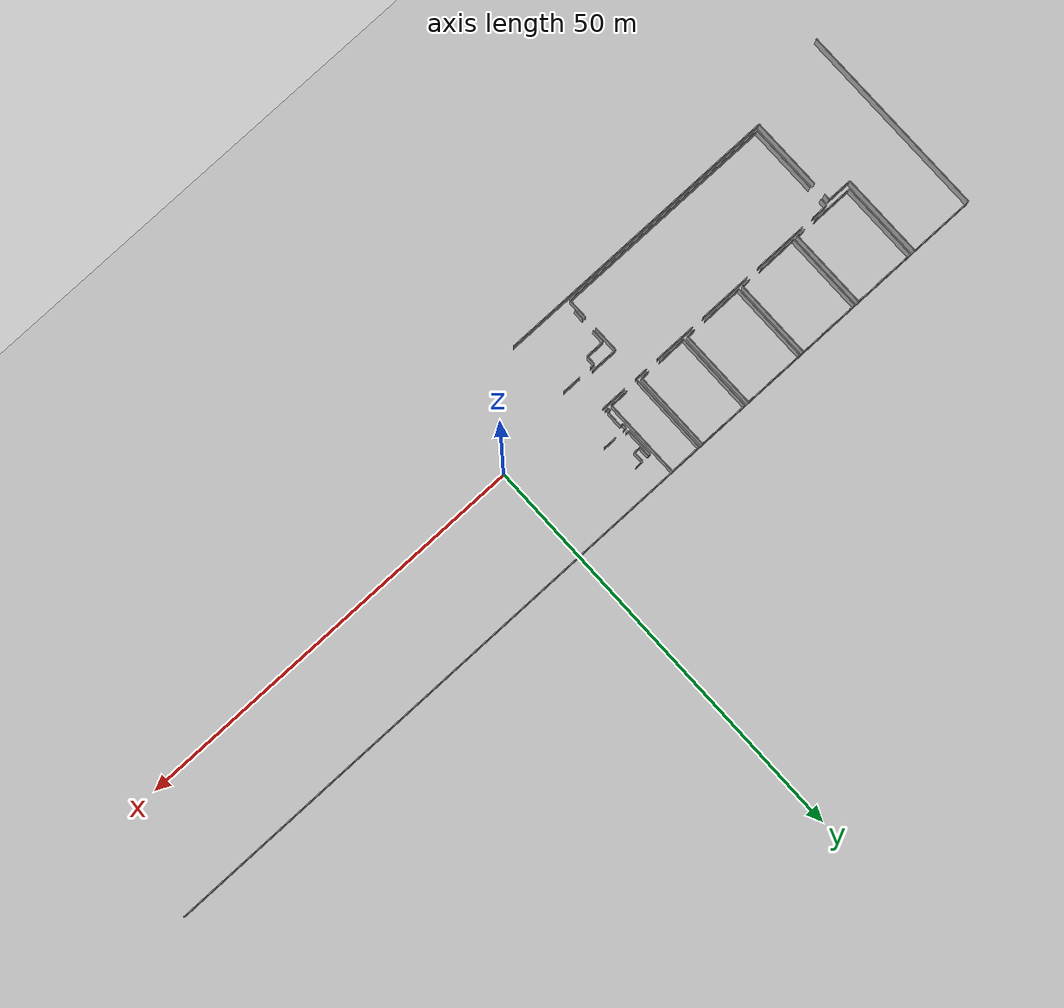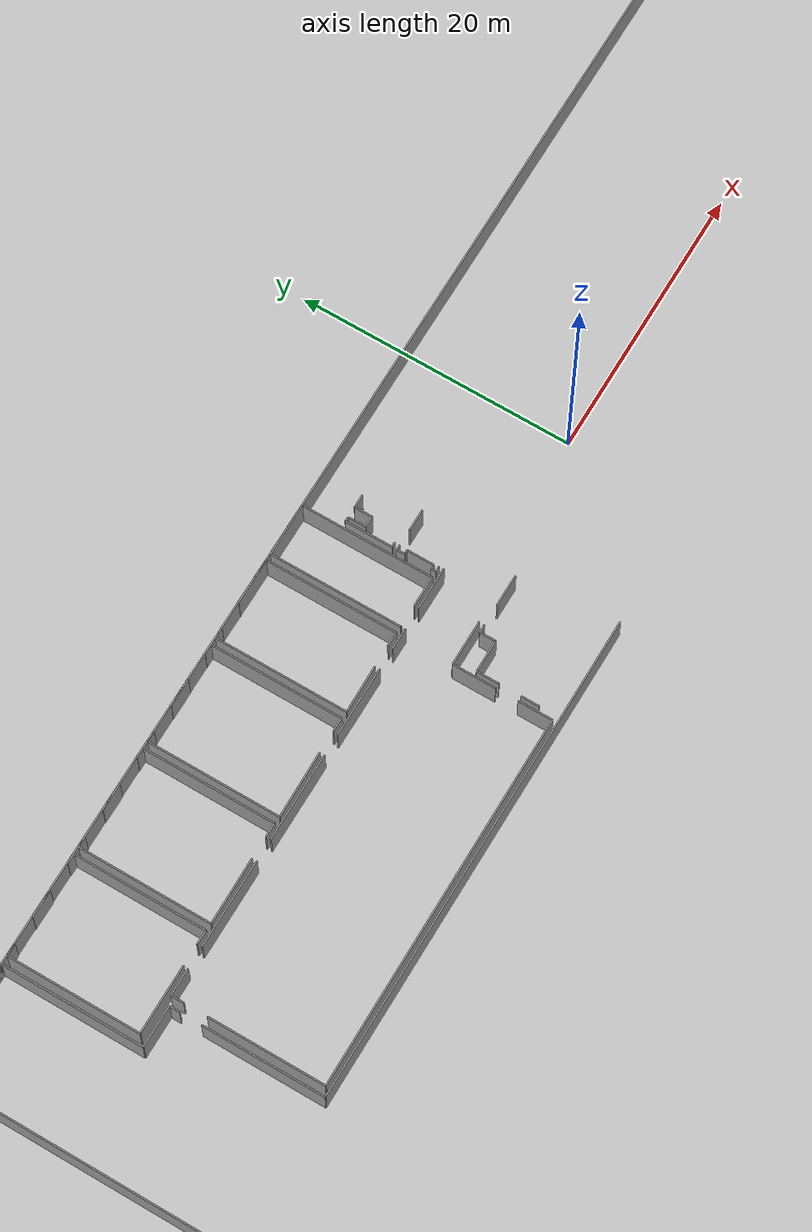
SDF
<sdf version="1.6">
 <world name="default">
  <model name="ground_plane">
   <static>1</static>
   <link name="link">
    <collision name="collision">
     <geometry><plane><normal>0 0 1</normal><size>100 100</size></plane></geometry>
     <surface><friction><ode><mu>100</mu><mu2>50</mu2></ode></friction></surface>
    </collision>
    <visual name="visual">
     <cast_shadows>0</cast_shadows>
     <geometry><plane><normal>0 0 1</normal><size>100 100</size></plane></geometry>
     <material>
      <script><uri>file://media/materials/scripts/gazebo.material</uri><name>Gazebo/Grey</name></script>
     </material>
    </visual>
   </link>
  </model>
  <model name="0510034693_Layout1">
   <static>1</static>
   <link name="Wall_0">
    <collision name="Wall_0_Collision">
     <geometry><box><size>23.9682171457 0.1 2.5</size></box></geometry>
     <pose>11.9841085728 0 1.25 0 0 0</pose>
    </collision>
    <visual name="Wall_0_Visual">
     <pose>11.9841085728 0 1.25 0 0 0</pose>
     <geometry><box><size>23.9682171457 0.1 2.5</size></box></geometry>
     <material>
      <script><uri>file://media/materials/scripts/gazebo.material</uri><name>Gazebo/Grey</name></script>
      <ambient>1 1 1 1</ambient>
     </material>
    </visual>
    <pose>0.0 -23.9682171457 0 0 0 1.57079632679</pose>
   </link>
   <link name="Wall_1">
    <collision name="Wall_1_Collision">
     <geometry><box><size>7.87282294673 0.1 2.5</size></box></geometry>
     <pose>3.93641147337 0 1.25 0 0 0</pose>
    </collision>
    <visual name="Wall_1_Visual">
     <pose>3.93641147337 0 1.25 0 0 0</pose>
     <geometry><box><size>7.87282294673 0.1 2.5</size></box></geometry>
     <material>
      <script><uri>file://media/materials/scripts/gazebo.material</uri><name>Gazebo/Grey</name></script>
      <ambient>1 1 1 1</ambient>
     </material>
    </visual>
   </link>
   <link name="Wall_2">
    <collision name="Wall_2_Collision">
     <geometry><box><size>10.2181268246 0.1 2.5</size></box></geometry>
     <pose>5.10906341232 0 1.25 0 0 0</pose>
    </collision>
    <visual name="Wall_2_Visual">
     <pose>5.10906341232 0 1.25 0 0 0</pose>
     <geometry><box><size>10.2181268246 0.1 2.5</size></box></geometry>
     <material>
      <script><uri>file://media/materials/scripts/gazebo.material</uri><name>Gazebo/Grey</name></script>
      <ambient>1 1 1 1</ambient>
     </material>
    </visual>
    <pose>7.87282294673 -0.0 0 0 0 -1.57079632679</pose>
   </link>
   <link name="Wall_3">
    <collision name="Wall_3_Collision">
     <geometry><box><size>2.9954883863 0.1 2.5</size></box></geometry>
     <pose>1.49774419315 0 1.25 0 0 0</pose>
    </collision>
    <visual name="Wall_3_Visual">
     <pose>1.49774419315 0 1.25 0 0 0</pose>
     <geometry><box><size>2.9954883863 0.1 2.5</size></box></geometry>
     <material>
      <script><uri>file://media/materials/scripts/gazebo.material</uri><name>Gazebo/Grey</name></script>
      <ambient>1 1 1 1</ambient>
     </material>
    </visual>
    <pose>7.87282294673 -10.2181268246 0 0 0 0.0</pose>
   </link>
   <link name="Wall_4">
    <collision name="Wall_4_Collision">
     <geometry><box><size>0.747921349098 0.1 2.5</size></box></geometry>
     <pose>0.373960674549 0 1.25 0 0 0</pose>
    </collision>
    <visual name="Wall_4_Visual">
     <pose>0.373960674549 0 1.25 0 0 0</pose>
     <geometry><box><size>0.747921349098 0.1 2.5</size></box></geometry>
     <material>
      <script><uri>file://media/materials/scripts/gazebo.material</uri><name>Gazebo/Grey</name></script>
      <ambient>1 1 1 1</ambient>
     </material>
    </visual>
    <pose>10.868311333 -10.2181268246 0 0 0 -1.57079632679</pose>
   </link>
   <link name="Wall_5">
    <collision name="Wall_5_Collision">
     <geometry><box><size>8.76069432454 0.1 2.5</size></box></geometry>
     <pose>4.38034716227 0 1.25 0 0 0</pose>
    </collision>
    <visual name="Wall_5_Visual">
     <pose>4.38034716227 0 1.25 0 0 0</pose>
     <geometry><box><size>8.76069432454 0.1 2.5</size></box></geometry>
     <material>
      <script><uri>file://media/materials/scripts/gazebo.material</uri><name>Gazebo/Grey</name></script>
      <ambient>1 1 1 1</ambient>
     </material>
    </visual>
    <pose>10.868311333 -12.5241331401 0 0 0 -1.57079632679</pose>
   </link>
   <link name="Wall_6">
    <collision name="Wall_6_Collision">
     <geometry><box><size>35.6847219951 0.1 2.5</size></box></geometry>
     <pose>17.8423609975 0 1.25 0 0 0</pose>
    </collision>
    <visual name="Wall_6_Visual">
     <pose>17.8423609975 0 1.25 0 0 0</pose>
     <geometry><box><size>35.6847219951 0.1 2.5</size></box></geometry>
     <material>
      <script><uri>file://media/materials/scripts/gazebo.material</uri><name>Gazebo/Grey</name></script>
      <ambient>1 1 1 1</ambient>
     </material>
    </visual>
    <pose>10.868311333 -21.2848274647 0 0 0 0.0</pose>
   </link>
   <link name="Wall_13">
    <collision name="Wall_13_Collision">
     <geometry><box><size>8.40017088101 0.1 2.5</size></box></geometry>
     <pose>4.20008544051 0 1.25 0 0 0</pose>
    </collision>
    <visual name="Wall_13_Visual">
     <pose>4.20008544051 0 1.25 0 0 0</pose>
     <geometry><box><size>8.40017088101 0.1 2.5</size></box></geometry>
     <material>
      <script><uri>file://media/materials/scripts/gazebo.material</uri><name>Gazebo/Grey</name></script>
      <ambient>1 1 1 1</ambient>
     </material>
    </visual>
    <pose>11.4894663518 -20.9425583727 0 0 0 1.57079632679</pose>
   </link>
   <link name="Wall_14">
    <collision name="Wall_14_Collision">
     <geometry><box><size>0.926535108569 0.1 2.5</size></box></geometry>
     <pose>0.463267554285 0 1.25 0 0 0</pose>
    </collision>
    <visual name="Wall_14_Visual">
     <pose>0.463267554285 0 1.25 0 0 0</pose>
     <geometry><box><size>0.926535108569 0.1 2.5</size></box></geometry>
     <material>
      <script><uri>file://media/materials/scripts/gazebo.material</uri><name>Gazebo/Grey</name></script>
      <ambient>1 1 1 1</ambient>
     </material>
    </visual>
    <pose>11.4894663518 -10.8651421748 0 0 0 1.57079632679</pose>
   </link>
   <link name="Wall_15">
    <collision name="Wall_15_Collision">
     <geometry><box><size>1.95752567335 0.1 2.5</size></box></geometry>
     <pose>0.978762836676 0 1.25 0 0 0</pose>
    </collision>
    <visual name="Wall_15_Visual">
     <pose>0.978762836676 0 1.25 0 0 0</pose>
     <geometry><box><size>1.95752567335 0.1 2.5</size></box></geometry>
     <material>
      <script><uri>file://media/materials/scripts/gazebo.material</uri><name>Gazebo/Grey</name></script>
      <ambient>1 1 1 1</ambient>
     </material>
    </visual>
    <pose>11.4894663518 -9.93860706621 0 0 0 0.0</pose>
   </link>
   <link name="Wall_16">
    <collision name="Wall_16_Collision">
     <geometry><box><size>6.38534682634 0.1 2.5</size></box></geometry>
     <pose>3.19267341317 0 1.25 0 0 0</pose>
    </collision>
    <visual name="Wall_16_Visual">
     <pose>3.19267341317 0 1.25 0 0 0</pose>
     <geometry><box><size>6.38534682634 0.1 2.5</size></box></geometry>
     <material>
      <script><uri>file://media/materials/scripts/gazebo.material</uri><name>Gazebo/Grey</name></script>
      <ambient>1 1 1 1</ambient>
     </material>
    </visual>
    <pose>15.054389094 -9.93860706621 0 0 0 0.0</pose>
   </link>
   <link name="Wall_17">
    <collision name="Wall_17_Collision">
     <geometry><box><size>6.40753093415 0.1 2.5</size></box></geometry>
     <pose>3.20376546708 0 1.25 0 0 0</pose>
    </collision>
    <visual name="Wall_17_Visual">
     <pose>3.20376546708 0 1.25 0 0 0</pose>
     <geometry><box><size>6.40753093415 0.1 2.5</size></box></geometry>
     <material>
      <script><uri>file://media/materials/scripts/gazebo.material</uri><name>Gazebo/Grey</name></script>
      <ambient>1 1 1 1</ambient>
     </material>
    </visual>
    <pose>23.0582884264 -9.93860706621 0 0 0 0.0</pose>
   </link>
   <link name="Wall_18">
    <collision name="Wall_18_Collision">
     <geometry><box><size>5.09955593754 0.1 2.5</size></box></geometry>
     <pose>2.54977796877 0 1.25 0 0 0</pose>
    </collision>
    <visual name="Wall_18_Visual">
     <pose>2.54977796877 0 1.25 0 0 0</pose>
     <geometry><box><size>5.09955593754 0.1 2.5</size></box></geometry>
     <material>
      <script><uri>file://media/materials/scripts/gazebo.material</uri><name>Gazebo/Grey</name></script>
      <ambient>1 1 1 1</ambient>
     </material>
    </visual>
    <pose>30.9956354352 -9.93860706621 0 0 0 0.0</pose>
   </link>
   <link name="Wall_19">
    <collision name="Wall_19_Collision">
     <geometry><box><size>1.56036676035 0.1 2.5</size></box></geometry>
     <pose>0.780183380173 0 1.25 0 0 0</pose>
    </collision>
    <visual name="Wall_19_Visual">
     <pose>0.780183380173 0 1.25 0 0 0</pose>
     <geometry><box><size>1.56036676035 0.1 2.5</size></box></geometry>
     <material>
      <script><uri>file://media/materials/scripts/gazebo.material</uri><name>Gazebo/Grey</name></script>
      <ambient>1 1 1 1</ambient>
     </material>
    </visual>
    <pose>37.6693756631 -9.93860706621 0 0 0 0.0</pose>
   </link>
   <link name="Wall_20">
    <collision name="Wall_20_Collision">
     <geometry><box><size>3.10514126206 0.1 2.5</size></box></geometry>
     <pose>1.55257063103 0 1.25 0 0 0</pose>
    </collision>
    <visual name="Wall_20_Visual">
     <pose>1.55257063103 0 1.25 0 0 0</pose>
     <geometry><box><size>3.10514126206 0.1 2.5</size></box></geometry>
     <material>
      <script><uri>file://media/materials/scripts/gazebo.material</uri><name>Gazebo/Grey</name></script>
      <ambient>1 1 1 1</ambient>
     </material>
    </visual>
    <pose>40.8333365025 -9.93860706621 0 0 0 0.0</pose>
   </link>
   <link name="Wall_23">
    <collision name="Wall_23_Collision">
     <geometry><box><size>3.30061494347 0.1 2.5</size></box></geometry>
     <pose>1.65030747173 0 1.25 0 0 0</pose>
    </collision>
    <visual name="Wall_23_Visual">
     <pose>1.65030747173 0 1.25 0 0 0</pose>
     <geometry><box><size>3.30061494347 0.1 2.5</size></box></geometry>
     <material>
      <script><uri>file://media/materials/scripts/gazebo.material</uri><name>Gazebo/Grey</name></script>
      <ambient>1 1 1 1</ambient>
     </material>
    </visual>
    <pose>42.0175875607 -13.6842985956 0 0 0 3.14159265359</pose>
   </link>
   <link name="Wall_24">
    <collision name="Wall_24_Collision">
     <geometry><box><size>3.14215703052 0.1 2.5</size></box></geometry>
     <pose>1.57107851526 0 1.25 0 0 0</pose>
    </collision>
    <visual name="Wall_24_Visual">
     <pose>1.57107851526 0 1.25 0 0 0</pose>
     <geometry><box><size>3.14215703052 0.1 2.5</size></box></geometry>
     <material>
      <script><uri>file://media/materials/scripts/gazebo.material</uri><name>Gazebo/Grey</name></script>
      <ambient>1 1 1 1</ambient>
     </material>
    </visual>
    <pose>38.7169726172 -13.6842985956 0 0 0 -1.57079632679</pose>
   </link>
   <link name="Wall_25">
    <collision name="Wall_25_Collision">
     <geometry><box><size>2.47916912276 0.1 2.5</size></box></geometry>
     <pose>1.23958456138 0 1.25 0 0 0</pose>
    </collision>
    <visual name="Wall_25_Visual">
     <pose>1.23958456138 0 1.25 0 0 0</pose>
     <geometry><box><size>2.47916912276 0.1 2.5</size></box></geometry>
     <material>
      <script><uri>file://media/materials/scripts/gazebo.material</uri><name>Gazebo/Grey</name></script>
      <ambient>1 1 1 1</ambient>
     </material>
    </visual>
    <pose>38.7169726172 -18.4408248432 0 0 0 -1.57079632679</pose>
   </link>
   <link name="Wall_26">
    <collision name="Wall_26_Collision">
     <geometry><box><size>27.2275156154 0.1 2.5</size></box></geometry>
     <pose>13.6137578077 0 1.25 0 0 0</pose>
    </collision>
    <visual name="Wall_26_Visual">
     <pose>13.6137578077 0 1.25 0 0 0</pose>
     <geometry><box><size>27.2275156154 0.1 2.5</size></box></geometry>
     <material>
      <script><uri>file://media/materials/scripts/gazebo.material</uri><name>Gazebo/Grey</name></script>
      <ambient>1 1 1 1</ambient>
     </material>
    </visual>
    <pose>38.7169726172 -20.9199939659 0 0 0 -3.14076391807</pose>
   </link>
   <link name="Wall_27">
    <collision name="Wall_27_Collision">
     <geometry><box><size>9.55919543945 0.1 2.5</size></box></geometry>
     <pose>4.77959771973 0 1.25 0 0 0</pose>
    </collision>
    <visual name="Wall_27_Visual">
     <pose>4.77959771973 0 1.25 0 0 0</pose>
     <geometry><box><size>9.55919543945 0.1 2.5</size></box></geometry>
     <material>
      <script><uri>file://media/materials/scripts/gazebo.material</uri><name>Gazebo/Grey</name></script>
      <ambient>1 1 1 1</ambient>
     </material>
    </visual>
    <pose>8.49385119915 -9.60014096416 0 0 0 1.57079632679</pose>
   </link>
   <link name="Wall_28">
    <collision name="Wall_28_Collision">
     <geometry><box><size>0.832347725115 0.1 2.5</size></box></geometry>
     <pose>0.416173862557 0 1.25 0 0 0</pose>
    </collision>
    <visual name="Wall_28_Visual">
     <pose>0.416173862557 0 1.25 0 0 0</pose>
     <geometry><box><size>0.832347725115 0.1 2.5</size></box></geometry>
     <material>
      <script><uri>file://media/materials/scripts/gazebo.material</uri><name>Gazebo/Grey</name></script>
      <ambient>1 1 1 1</ambient>
     </material>
    </visual>
    <pose>8.49385119915 -0.0409455247049 0 0 0 0.0</pose>
   </link>
   <link name="Wall_29">
    <collision name="Wall_29_Collision">
     <geometry><box><size>1.98389307007 0.1 2.5</size></box></geometry>
     <pose>0.991946535033 0 1.25 0 0 0</pose>
    </collision>
    <visual name="Wall_29_Visual">
     <pose>0.991946535033 0 1.25 0 0 0</pose>
     <geometry><box><size>1.98389307007 0.1 2.5</size></box></geometry>
     <material>
      <script><uri>file://media/materials/scripts/gazebo.material</uri><name>Gazebo/Grey</name></script>
      <ambient>1 1 1 1</ambient>
     </material>
    </visual>
    <pose>11.3320225695 -0.0409455247049 0 0 0 0.0</pose>
   </link>
   <link name="Wall_30">
    <collision name="Wall_30_Collision">
     <geometry><box><size>0.745386022491 0.1 2.5</size></box></geometry>
     <pose>0.372693011245 0 1.25 0 0 0</pose>
    </collision>
    <visual name="Wall_30_Visual">
     <pose>0.372693011245 0 1.25 0 0 0</pose>
     <geometry><box><size>0.745386022491 0.1 2.5</size></box></geometry>
     <material>
      <script><uri>file://media/materials/scripts/gazebo.material</uri><name>Gazebo/Grey</name></script>
      <ambient>1 1 1 1</ambient>
     </material>
    </visual>
    <pose>15.3162883326 -0.0409455247049 0 0 0 0.0</pose>
   </link>
   <link name="Wall_31">
    <collision name="Wall_31_Collision">
     <geometry><box><size>9.55767424349 0.1 2.5</size></box></geometry>
     <pose>4.77883712175 0 1.25 0 0 0</pose>
    </collision>
    <visual name="Wall_31_Visual">
     <pose>4.77883712175 0 1.25 0 0 0</pose>
     <geometry><box><size>9.55767424349 0.1 2.5</size></box></geometry>
     <material>
      <script><uri>file://media/materials/scripts/gazebo.material</uri><name>Gazebo/Grey</name></script>
      <ambient>1 1 1 1</ambient>
     </material>
    </visual>
    <pose>16.061674355 -0.0409455247049 0 0 0 -1.57079632679</pose>
   </link>
   <link name="Wall_32">
    <collision name="Wall_32_Collision">
     <geometry><box><size>1.02870877084 0.1 2.5</size></box></geometry>
     <pose>0.514354385418 0 1.25 0 0 0</pose>
    </collision>
    <visual name="Wall_32_Visual">
     <pose>0.514354385418 0 1.25 0 0 0</pose>
     <geometry><box><size>1.02870877084 0.1 2.5</size></box></geometry>
     <material>
      <script><uri>file://media/materials/scripts/gazebo.material</uri><name>Gazebo/Grey</name></script>
      <ambient>1 1 1 1</ambient>
     </material>
    </visual>
    <pose>16.061674355 -9.5986197682 0 0 0 3.14159265359</pose>
   </link>
   <link name="Wall_33">
    <collision name="Wall_33_Collision">
     <geometry><box><size>4.97481810105 0.1 2.5</size></box></geometry>
     <pose>2.48740905052 0 1.25 0 0 0</pose>
    </collision>
    <visual name="Wall_33_Visual">
     <pose>2.48740905052 0 1.25 0 0 0</pose>
     <geometry><box><size>4.97481810105 0.1 2.5</size></box></geometry>
     <material>
      <script><uri>file://media/materials/scripts/gazebo.material</uri><name>Gazebo/Grey</name></script>
      <ambient>1 1 1 1</ambient>
     </material>
    </visual>
    <pose>13.4686690676 -9.5986197682 0 0 0 -3.14128687437</pose>
   </link>
   <link name="Wall_34">
    <collision name="Wall_34_Collision">
     <geometry><box><size>9.60863430829 0.1 2.5</size></box></geometry>
     <pose>4.80431715415 0 1.25 0 0 0</pose>
    </collision>
    <visual name="Wall_34_Visual">
     <pose>4.80431715415 0 1.25 0 0 0</pose>
     <geometry><box><size>9.60863430829 0.1 2.5</size></box></geometry>
     <material>
      <script><uri>file://media/materials/scripts/gazebo.material</uri><name>Gazebo/Grey</name></script>
      <ambient>1 1 1 1</ambient>
     </material>
    </visual>
    <pose>16.5913040833 -9.64210061951 0 0 0 1.57079632679</pose>
   </link>
   <link name="Wall_35">
    <collision name="Wall_35_Collision">
     <geometry><box><size>0.721173653393 0.1 2.5</size></box></geometry>
     <pose>0.360586826696 0 1.25 0 0 0</pose>
    </collision>
    <visual name="Wall_35_Visual">
     <pose>0.360586826696 0 1.25 0 0 0</pose>
     <geometry><box><size>0.721173653393 0.1 2.5</size></box></geometry>
     <material>
      <script><uri>file://media/materials/scripts/gazebo.material</uri><name>Gazebo/Grey</name></script>
      <ambient>1 1 1 1</ambient>
     </material>
    </visual>
    <pose>16.5913040833 -0.0334663112139 0 0 0 0.0</pose>
   </link>
   <link name="Wall_36">
    <collision name="Wall_36_Collision">
     <geometry><box><size>1.97451236162 0.1 2.5</size></box></geometry>
     <pose>0.987256180809 0 1.25 0 0 0</pose>
    </collision>
    <visual name="Wall_36_Visual">
     <pose>0.987256180809 0 1.25 0 0 0</pose>
     <geometry><box><size>1.97451236162 0.1 2.5</size></box></geometry>
     <material>
      <script><uri>file://media/materials/scripts/gazebo.material</uri><name>Gazebo/Grey</name></script>
      <ambient>1 1 1 1</ambient>
     </material>
    </visual>
    <pose>19.3445420123 -0.0334663112139 0 0 0 0.0</pose>
   </link>
   <link name="Wall_37">
    <collision name="Wall_37_Collision">
     <geometry><box><size>0.747667816437 0.1 2.5</size></box></geometry>
     <pose>0.373833908219 0 1.25 0 0 0</pose>
    </collision>
    <visual name="Wall_37_Visual">
     <pose>0.373833908219 0 1.25 0 0 0</pose>
     <geometry><box><size>0.747667816437 0.1 2.5</size></box></geometry>
     <material>
      <script><uri>file://media/materials/scripts/gazebo.material</uri><name>Gazebo/Grey</name></script>
      <ambient>1 1 1 1</ambient>
     </material>
    </visual>
    <pose>23.3319769336 -0.0334663112139 0 0 0 0.0</pose>
   </link>
   <link name="Wall_38">
    <collision name="Wall_38_Collision">
     <geometry><box><size>9.56616758762 0.1 2.5</size></box></geometry>
     <pose>4.78308379381 0 1.25 0 0 0</pose>
    </collision>
    <visual name="Wall_38_Visual">
     <pose>4.78308379381 0 1.25 0 0 0</pose>
     <geometry><box><size>9.56616758762 0.1 2.5</size></box></geometry>
     <material>
      <script><uri>file://media/materials/scripts/gazebo.material</uri><name>Gazebo/Grey</name></script>
      <ambient>1 1 1 1</ambient>
     </material>
    </visual>
    <pose>24.07964475 -0.0334663112139 0 0 0 -1.57079632679</pose>
   </link>
   <link name="Wall_39">
    <collision name="Wall_39_Collision">
     <geometry><box><size>1.04480809479 0.1 2.5</size></box></geometry>
     <pose>0.522404047395 0 1.25 0 0 0</pose>
    </collision>
    <visual name="Wall_39_Visual">
     <pose>0.522404047395 0 1.25 0 0 0</pose>
     <geometry><box><size>1.04480809479 0.1 2.5</size></box></geometry>
     <material>
      <script><uri>file://media/materials/scripts/gazebo.material</uri><name>Gazebo/Grey</name></script>
      <ambient>1 1 1 1</ambient>
     </material>
    </visual>
    <pose>24.07964475 -9.59963389884 0 0 0 3.14159265359</pose>
   </link>
   <link name="Wall_40">
    <collision name="Wall_40_Collision">
     <geometry><box><size>4.84722343738 0.1 2.5</size></box></geometry>
     <pose>2.42361171869 0 1.25 0 0 0</pose>
    </collision>
    <visual name="Wall_40_Visual">
     <pose>2.42361171869 0 1.25 0 0 0</pose>
     <geometry><box><size>4.84722343738 0.1 2.5</size></box></geometry>
     <material>
      <script><uri>file://media/materials/scripts/gazebo.material</uri><name>Gazebo/Grey</name></script>
      <ambient>1 1 1 1</ambient>
     </material>
    </visual>
    <pose>21.4383414907 -9.59963389884 0 0 0 -3.13283150105</pose>
   </link>
   <link name="Wall_41">
    <collision name="Wall_41_Collision">
     <geometry><box><size>9.6240998006 0.1 2.5</size></box></geometry>
     <pose>4.8120499003 0 1.25 0 0 0</pose>
    </collision>
    <visual name="Wall_41_Visual">
     <pose>4.8120499003 0 1.25 0 0 0</pose>
     <geometry><box><size>9.6240998006 0.1 2.5</size></box></geometry>
     <material>
      <script><uri>file://media/materials/scripts/gazebo.material</uri><name>Gazebo/Grey</name></script>
      <ambient>1 1 1 1</ambient>
     </material>
    </visual>
    <pose>24.5949498829 -9.64717127272 0 0 0 1.57079632679</pose>
   </link>
   <link name="Wall_42">
    <collision name="Wall_42_Collision">
     <geometry><box><size>0.735878547714 0.1 2.5</size></box></geometry>
     <pose>0.367939273857 0 1.25 0 0 0</pose>
    </collision>
    <visual name="Wall_42_Visual">
     <pose>0.367939273857 0 1.25 0 0 0</pose>
     <geometry><box><size>0.735878547714 0.1 2.5</size></box></geometry>
     <material>
      <script><uri>file://media/materials/scripts/gazebo.material</uri><name>Gazebo/Grey</name></script>
      <ambient>1 1 1 1</ambient>
     </material>
    </visual>
    <pose>24.5949498829 -0.0230714721247 0 0 0 0.0</pose>
   </link>
   <link name="Wall_43">
    <collision name="Wall_43_Collision">
     <geometry><box><size>2.02547242642 0.1 2.5</size></box></geometry>
     <pose>1.01273621321 0 1.25 0 0 0</pose>
    </collision>
    <visual name="Wall_43_Visual">
     <pose>1.01273621321 0 1.25 0 0 0</pose>
     <geometry><box><size>2.02547242642 0.1 2.5</size></box></geometry>
     <material>
      <script><uri>file://media/materials/scripts/gazebo.material</uri><name>Gazebo/Grey</name></script>
      <ambient>1 1 1 1</ambient>
     </material>
    </visual>
    <pose>27.3228345459 -0.0230714721247 0 0 0 0.0</pose>
   </link>
   <link name="Wall_44">
    <collision name="Wall_44_Collision">
     <geometry><box><size>0.758442954518 0.1 2.5</size></box></geometry>
     <pose>0.379221477259 0 1.25 0 0 0</pose>
    </collision>
    <visual name="Wall_44_Visual">
     <pose>0.379221477259 0 1.25 0 0 0</pose>
     <geometry><box><size>0.758442954518 0.1 2.5</size></box></geometry>
     <material>
      <script><uri>file://media/materials/scripts/gazebo.material</uri><name>Gazebo/Grey</name></script>
      <ambient>1 1 1 1</ambient>
     </material>
    </visual>
    <pose>31.3237066982 -0.0230714721247 0 0 0 0.0</pose>
   </link>
   <link name="Wall_45">
    <collision name="Wall_45_Collision">
     <geometry><box><size>9.5685761479 0.1 2.5</size></box></geometry>
     <pose>4.78428807395 0 1.25 0 0 0</pose>
    </collision>
    <visual name="Wall_45_Visual">
     <pose>4.78428807395 0 1.25 0 0 0</pose>
     <geometry><box><size>9.5685761479 0.1 2.5</size></box></geometry>
     <material>
      <script><uri>file://media/materials/scripts/gazebo.material</uri><name>Gazebo/Grey</name></script>
      <ambient>1 1 1 1</ambient>
     </material>
    </visual>
    <pose>32.0821496527 -0.0230714721247 0 0 0 -1.57079632679</pose>
   </link>
   <link name="Wall_46">
    <collision name="Wall_46_Collision">
     <geometry><box><size>1.01679273578 0.1 2.5</size></box></geometry>
     <pose>0.508396367891 0 1.25 0 0 0</pose>
    </collision>
    <visual name="Wall_46_Visual">
     <pose>0.508396367891 0 1.25 0 0 0</pose>
     <geometry><box><size>1.01679273578 0.1 2.5</size></box></geometry>
     <material>
      <script><uri>file://media/materials/scripts/gazebo.material</uri><name>Gazebo/Grey</name></script>
      <ambient>1 1 1 1</ambient>
     </material>
    </visual>
    <pose>32.0821496527 -9.59164762003 0 0 0 3.14159265359</pose>
   </link>
   <link name="Wall_47">
    <collision name="Wall_47_Collision">
     <geometry><box><size>4.87765059126 0.1 2.5</size></box></geometry>
     <pose>2.43882529563 0 1.25 0 0 0</pose>
    </collision>
    <visual name="Wall_47_Visual">
     <pose>2.43882529563 0 1.25 0 0 0</pose>
     <geometry><box><size>4.87765059126 0.1 2.5</size></box></geometry>
     <material>
      <script><uri>file://media/materials/scripts/gazebo.material</uri><name>Gazebo/Grey</name></script>
      <ambient>1 1 1 1</ambient>
     </material>
    </visual>
    <pose>29.4722844434 -9.59164762003 0 0 0 -3.13020912973</pose>
   </link>
   <link name="Wall_48">
    <collision name="Wall_48_Collision">
     <geometry><box><size>9.62524069757 0.1 2.5</size></box></geometry>
     <pose>4.81262034878 0 1.25 0 0 0</pose>
    </collision>
    <visual name="Wall_48_Visual">
     <pose>4.81262034878 0 1.25 0 0 0</pose>
     <geometry><box><size>9.62524069757 0.1 2.5</size></box></geometry>
     <material>
      <script><uri>file://media/materials/scripts/gazebo.material</uri><name>Gazebo/Grey</name></script>
      <ambient>1 1 1 1</ambient>
     </material>
    </visual>
    <pose>32.6018916072 -9.64210061951 0 0 0 1.57079632679</pose>
   </link>
   <link name="Wall_49">
    <collision name="Wall_49_Collision">
     <geometry><box><size>0.732075557804 0.1 2.5</size></box></geometry>
     <pose>0.366037778902 0 1.25 0 0 0</pose>
    </collision>
    <visual name="Wall_49_Visual">
     <pose>0.366037778902 0 1.25 0 0 0</pose>
     <geometry><box><size>0.732075557804 0.1 2.5</size></box></geometry>
     <material>
      <script><uri>file://media/materials/scripts/gazebo.material</uri><name>Gazebo/Grey</name></script>
      <ambient>1 1 1 1</ambient>
     </material>
    </visual>
    <pose>32.6018916072 -0.0168599219373 0 0 0 0.0</pose>
   </link>
   <link name="Wall_50">
    <collision name="Wall_50_Collision">
     <geometry><box><size>3.37033642516 0.1 2.5</size></box></geometry>
     <pose>1.68516821258 0 1.25 0 0 0</pose>
    </collision>
    <visual name="Wall_50_Visual">
     <pose>1.68516821258 0 1.25 0 0 0</pose>
     <geometry><box><size>3.37033642516 0.1 2.5</size></box></geometry>
     <material>
      <script><uri>file://media/materials/scripts/gazebo.material</uri><name>Gazebo/Grey</name></script>
      <ambient>1 1 1 1</ambient>
     </material>
    </visual>
    <pose>35.3415655388 -0.0168599219373 0 0 0 0.0</pose>
   </link>
   <link name="Wall_51">
    <collision name="Wall_51_Collision">
     <geometry><box><size>9.57326650212 0.1 2.5</size></box></geometry>
     <pose>4.78663325106 0 1.25 0 0 0</pose>
    </collision>
    <visual name="Wall_51_Visual">
     <pose>4.78663325106 0 1.25 0 0 0</pose>
     <geometry><box><size>9.57326650212 0.1 2.5</size></box></geometry>
     <material>
      <script><uri>file://media/materials/scripts/gazebo.material</uri><name>Gazebo/Grey</name></script>
      <ambient>1 1 1 1</ambient>
     </material>
    </visual>
    <pose>38.711901964 -0.0168599219373 0 0 0 -1.57079632679</pose>
   </link>
   <link name="Wall_52">
    <collision name="Wall_52_Collision">
     <geometry><box><size>1.01337004486 0.1 2.5</size></box></geometry>
     <pose>0.506685022431 0 1.25 0 0 0</pose>
    </collision>
    <visual name="Wall_52_Visual">
     <pose>0.506685022431 0 1.25 0 0 0</pose>
     <geometry><box><size>1.01337004486 0.1 2.5</size></box></geometry>
     <material>
      <script><uri>file://media/materials/scripts/gazebo.material</uri><name>Gazebo/Grey</name></script>
      <ambient>1 1 1 1</ambient>
     </material>
    </visual>
    <pose>38.711901964 -9.59012642406 0 0 0 3.14159265359</pose>
   </link>
   <link name="Wall_53">
    <collision name="Wall_53_Collision">
     <geometry><box><size>3.47936338321 0.1 2.5</size></box></geometry>
     <pose>1.7396816916 0 1.25 0 0 0</pose>
    </collision>
    <visual name="Wall_53_Visual">
     <pose>1.7396816916 0 1.25 0 0 0</pose>
     <geometry><box><size>3.47936338321 0.1 2.5</size></box></geometry>
     <material>
      <script><uri>file://media/materials/scripts/gazebo.material</uri><name>Gazebo/Grey</name></script>
      <ambient>1 1 1 1</ambient>
     </material>
    </visual>
    <pose>36.0808667775 -9.59012642406 0 0 0 -3.1266542517</pose>
   </link>
   <link name="Wall_54">
    <collision name="Wall_54_Collision">
     <geometry><box><size>1.31532744377 0.1 2.5</size></box></geometry>
     <pose>0.657663721885 0 1.25 0 0 0</pose>
    </collision>
    <visual name="Wall_54_Visual">
     <pose>0.657663721885 0 1.25 0 0 0</pose>
     <geometry><box><size>1.31532744377 0.1 2.5</size></box></geometry>
     <material>
      <script><uri>file://media/materials/scripts/gazebo.material</uri><name>Gazebo/Grey</name></script>
      <ambient>1 1 1 1</ambient>
     </material>
    </visual>
    <pose>39.0715380432 -19.7570396512 0 0 0 1.57079632679</pose>
   </link>
   <link name="Wall_55">
    <collision name="Wall_55_Collision">
     <geometry><box><size>1.63363769929 0.1 2.5</size></box></geometry>
     <pose>0.816818849646 0 1.25 0 0 0</pose>
    </collision>
    <visual name="Wall_55_Visual">
     <pose>0.816818849646 0 1.25 0 0 0</pose>
     <geometry><box><size>1.63363769929 0.1 2.5</size></box></geometry>
     <material>
      <script><uri>file://media/materials/scripts/gazebo.material</uri><name>Gazebo/Grey</name></script>
      <ambient>1 1 1 1</ambient>
     </material>
    </visual>
    <pose>39.0715380432 -16.8599219373 0 0 0 1.57079632679</pose>
   </link>
   <link name="Wall_56">
    <collision name="Wall_56_Collision">
     <geometry><box><size>2.35430428736 0.1 2.5</size></box></geometry>
     <pose>1.17715214368 0 1.25 0 0 0</pose>
    </collision>
    <visual name="Wall_56_Visual">
     <pose>1.17715214368 0 1.25 0 0 0</pose>
     <geometry><box><size>2.35430428736 0.1 2.5</size></box></geometry>
     <material>
      <script><uri>file://media/materials/scripts/gazebo.material</uri><name>Gazebo/Grey</name></script>
      <ambient>1 1 1 1</ambient>
     </material>
    </visual>
    <pose>39.0715380432 -15.226284238 0 0 0 0.0</pose>
   </link>
   <link name="Wall_57">
    <collision name="Wall_57_Collision">
     <geometry><box><size>1.15851749312 0.1 2.5</size></box></geometry>
     <pose>0.57925874656 0 1.25 0 0 0</pose>
    </collision>
    <visual name="Wall_57_Visual">
     <pose>0.57925874656 0 1.25 0 0 0</pose>
     <geometry><box><size>1.15851749312 0.1 2.5</size></box></geometry>
     <material>
      <script><uri>file://media/materials/scripts/gazebo.material</uri><name>Gazebo/Grey</name></script>
      <ambient>1 1 1 1</ambient>
     </material>
    </visual>
    <pose>41.4258423306 -15.226284238 0 0 0 1.57079632679</pose>
   </link>
   <link name="Wall_58">
    <collision name="Wall_58_Collision">
     <geometry><box><size>0.56677226302 0.1 2.5</size></box></geometry>
     <pose>0.28338613151 0 1.25 0 0 0</pose>
    </collision>
    <visual name="Wall_58_Visual">
     <pose>0.28338613151 0 1.25 0 0 0</pose>
     <geometry><box><size>0.56677226302 0.1 2.5</size></box></geometry>
     <material>
      <script><uri>file://media/materials/scripts/gazebo.material</uri><name>Gazebo/Grey</name></script>
      <ambient>1 1 1 1</ambient>
     </material>
    </visual>
    <pose>41.4258423306 -14.0677667449 0 0 0 0.0</pose>
   </link>
   <link name="Wall_59">
    <collision name="Wall_59_Collision">
     <geometry><box><size>2.2717794063 0.1 2.5</size></box></geometry>
     <pose>1.13588970315 0 1.25 0 0 0</pose>
    </collision>
    <visual name="Wall_59_Visual">
     <pose>1.13588970315 0 1.25 0 0 0</pose>
     <geometry><box><size>2.2717794063 0.1 2.5</size></box></geometry>
     <material>
      <script><uri>file://media/materials/scripts/gazebo.material</uri><name>Gazebo/Grey</name></script>
      <ambient>1 1 1 1</ambient>
     </material>
    </visual>
    <pose>43.5763063587 -14.0677667449 0 0 0 0.0</pose>
   </link>
   <link name="Wall_62">
    <collision name="Wall_62_Collision">
     <geometry><box><size>0.341762026639 0.1 2.5</size></box></geometry>
     <pose>0.170881013319 0 1.25 0 0 0</pose>
    </collision>
    <visual name="Wall_62_Visual">
     <pose>0.170881013319 0 1.25 0 0 0</pose>
     <geometry><box><size>0.341762026639 0.1 2.5</size></box></geometry>
     <material>
      <script><uri>file://media/materials/scripts/gazebo.material</uri><name>Gazebo/Grey</name></script>
      <ambient>1 1 1 1</ambient>
     </material>
    </visual>
    <pose>43.5429668138 -9.60014096416 0 0 0 1.57079632679</pose>
   </link>
   <link name="Wall_63">
    <collision name="Wall_63_Collision">
     <geometry><box><size>0.300055903952 0.1 2.5</size></box></geometry>
     <pose>0.150027951976 0 1.25 0 0 0</pose>
    </collision>
    <visual name="Wall_63_Visual">
     <pose>0.150027951976 0 1.25 0 0 0</pose>
     <geometry><box><size>0.300055903952 0.1 2.5</size></box></geometry>
     <material>
      <script><uri>file://media/materials/scripts/gazebo.material</uri><name>Gazebo/Grey</name></script>
      <ambient>1 1 1 1</ambient>
     </material>
    </visual>
    <pose>43.5429668138 -9.25837893752 0 0 0 0.0</pose>
   </link>
   <link name="Wall_64">
    <collision name="Wall_64_Collision">
     <geometry><box><size>1.95042675885 0.1 2.5</size></box></geometry>
     <pose>0.975213379426 0 1.25 0 0 0</pose>
    </collision>
    <visual name="Wall_64_Visual">
     <pose>0.975213379426 0 1.25 0 0 0</pose>
     <geometry><box><size>1.95042675885 0.1 2.5</size></box></geometry>
     <material>
      <script><uri>file://media/materials/scripts/gazebo.material</uri><name>Gazebo/Grey</name></script>
      <ambient>1 1 1 1</ambient>
     </material>
    </visual>
    <pose>43.8430227178 -9.25837893752 0 0 0 1.57079632679</pose>
   </link>
   <link name="Wall_65">
    <collision name="Wall_65_Collision">
     <geometry><box><size>0.308422481755 0.1 2.5</size></box></geometry>
     <pose>0.154211240878 0 1.25 0 0 0</pose>
    </collision>
    <visual name="Wall_65_Visual">
     <pose>0.154211240878 0 1.25 0 0 0</pose>
     <geometry><box><size>0.308422481755 0.1 2.5</size></box></geometry>
     <material>
      <script><uri>file://media/materials/scripts/gazebo.material</uri><name>Gazebo/Grey</name></script>
      <ambient>1 1 1 1</ambient>
     </material>
    </visual>
    <pose>43.8430227178 -7.30795217867 0 0 0 3.14159265359</pose>
   </link>
   <link name="Wall_66">
    <collision name="Wall_66_Collision">
     <geometry><box><size>0.575138840823 0.1 2.5</size></box></geometry>
     <pose>0.287569420412 0 1.25 0 0 0</pose>
    </collision>
    <visual name="Wall_66_Visual">
     <pose>0.287569420412 0 1.25 0 0 0</pose>
     <geometry><box><size>0.575138840823 0.1 2.5</size></box></geometry>
     <material>
      <script><uri>file://media/materials/scripts/gazebo.material</uri><name>Gazebo/Grey</name></script>
      <ambient>1 1 1 1</ambient>
     </material>
    </visual>
    <pose>43.534600236 -7.30795217867 0 0 0 1.57079632679</pose>
   </link>
   <link name="Wall_67">
    <collision name="Wall_67_Collision">
     <geometry><box><size>0.366734993719 0.1 2.5</size></box></geometry>
     <pose>0.183367496859 0 1.25 0 0 0</pose>
    </collision>
    <visual name="Wall_67_Visual">
     <pose>0.183367496859 0 1.25 0 0 0</pose>
     <geometry><box><size>0.366734993719 0.1 2.5</size></box></geometry>
     <material>
      <script><uri>file://media/materials/scripts/gazebo.material</uri><name>Gazebo/Grey</name></script>
      <ambient>1 1 1 1</ambient>
     </material>
    </visual>
    <pose>43.534600236 -6.73281333785 0 0 0 0.0</pose>
   </link>
   <link name="Wall_68">
    <collision name="Wall_68_Collision">
     <geometry><box><size>1.57887464458 0.1 2.5</size></box></geometry>
     <pose>0.789437322289 0 1.25 0 0 0</pose>
    </collision>
    <visual name="Wall_68_Visual">
     <pose>0.789437322289 0 1.25 0 0 0</pose>
     <geometry><box><size>1.57887464458 0.1 2.5</size></box></geometry>
     <material>
      <script><uri>file://media/materials/scripts/gazebo.material</uri><name>Gazebo/Grey</name></script>
      <ambient>1 1 1 1</ambient>
     </material>
    </visual>
    <pose>45.0871074839 -6.73281333785 0 0 0 0.0</pose>
   </link>
   <link name="Wall_72">
    <collision name="Wall_72_Collision">
     <geometry><box><size>0.389299400522 0.1 2.5</size></box></geometry>
     <pose>0.194649700261 0 1.25 0 0 0</pose>
    </collision>
    <visual name="Wall_72_Visual">
     <pose>0.194649700261 0 1.25 0 0 0</pose>
     <geometry><box><size>0.389299400522 0.1 2.5</size></box></geometry>
     <material>
      <script><uri>file://media/materials/scripts/gazebo.material</uri><name>Gazebo/Grey</name></script>
      <ambient>1 1 1 1</ambient>
     </material>
    </visual>
    <pose>43.9322662144 -9.60014096416 0 0 0 3.14159265359</pose>
   </link>
   <link name="Wall_73">
    <collision name="Wall_73_Collision">
     <geometry><box><size>3.44360736411 0.1 2.5</size></box></geometry>
     <pose>1.72180368205 0 1.25 0 0 0</pose>
    </collision>
    <visual name="Wall_73_Visual">
     <pose>1.72180368205 0 1.25 0 0 0</pose>
     <geometry><box><size>3.44360736411 0.1 2.5</size></box></geometry>
     <material>
      <script><uri>file://media/materials/scripts/gazebo.material</uri><name>Gazebo/Grey</name></script>
      <ambient>1 1 1 1</ambient>
     </material>
    </visual>
    <pose>43.5386567586 -6.3801494068 0 0 0 1.57079632679</pose>
   </link>
   <link name="Wall_74">
    <collision name="Wall_74_Collision">
     <geometry><box><size>0.317929956532 0.1 2.5</size></box></geometry>
     <pose>0.158964978266 0 1.25 0 0 0</pose>
    </collision>
    <visual name="Wall_74_Visual">
     <pose>0.158964978266 0 1.25 0 0 0</pose>
     <geometry><box><size>0.317929956532 0.1 2.5</size></box></geometry>
     <material>
      <script><uri>file://media/materials/scripts/gazebo.material</uri><name>Gazebo/Grey</name></script>
      <ambient>1 1 1 1</ambient>
     </material>
    </visual>
    <pose>43.5386567586 -2.93654204269 0 0 0 0.0</pose>
   </link>
   <link name="Wall_75">
    <collision name="Wall_75_Collision">
     <geometry><box><size>1.2983407555 0.1 2.5</size></box></geometry>
     <pose>0.649170377751 0 1.25 0 0 0</pose>
    </collision>
    <visual name="Wall_75_Visual">
     <pose>0.649170377751 0 1.25 0 0 0</pose>
     <geometry><box><size>1.2983407555 0.1 2.5</size></box></geometry>
     <material>
      <script><uri>file://media/materials/scripts/gazebo.material</uri><name>Gazebo/Grey</name></script>
      <ambient>1 1 1 1</ambient>
     </material>
    </visual>
    <pose>43.8565867151 -2.93654204269 0 0 0 -1.57079632679</pose>
   </link>
   <link name="Wall_76">
    <collision name="Wall_76_Collision">
     <geometry><box><size>0.800402609865 0.1 2.5</size></box></geometry>
     <pose>0.400201304933 0 1.25 0 0 0</pose>
    </collision>
    <visual name="Wall_76_Visual">
     <pose>0.400201304933 0 1.25 0 0 0</pose>
     <geometry><box><size>0.800402609865 0.1 2.5</size></box></geometry>
     <material>
      <script><uri>file://media/materials/scripts/gazebo.material</uri><name>Gazebo/Grey</name></script>
      <ambient>1 1 1 1</ambient>
     </material>
    </visual>
    <pose>43.8565867151 -4.23488279819 0 0 0 0.0</pose>
   </link>
   <link name="Wall_77">
    <collision name="Wall_77_Collision">
     <geometry><box><size>1.2983407555 0.1 2.5</size></box></geometry>
     <pose>0.649170377751 0 1.25 0 0 0</pose>
    </collision>
    <visual name="Wall_77_Visual">
     <pose>0.649170377751 0 1.25 0 0 0</pose>
     <geometry><box><size>1.2983407555 0.1 2.5</size></box></geometry>
     <material>
      <script><uri>file://media/materials/scripts/gazebo.material</uri><name>Gazebo/Grey</name></script>
      <ambient>1 1 1 1</ambient>
     </material>
    </visual>
    <pose>44.656989325 -4.23488279819 0 0 0 1.57079632679</pose>
   </link>
   <link name="Wall_78">
    <collision name="Wall_78_Collision">
     <geometry><box><size>0.939084975274 0.1 2.5</size></box></geometry>
     <pose>0.469542487637 0 1.25 0 0 0</pose>
    </collision>
    <visual name="Wall_78_Visual">
     <pose>0.469542487637 0 1.25 0 0 0</pose>
     <geometry><box><size>0.939084975274 0.1 2.5</size></box></geometry>
     <material>
      <script><uri>file://media/materials/scripts/gazebo.material</uri><name>Gazebo/Grey</name></script>
      <ambient>1 1 1 1</ambient>
     </material>
    </visual>
    <pose>44.656989325 -2.93654204269 0 0 0 0.0</pose>
   </link>
   <link name="Wall_85">
    <collision name="Wall_85_Collision">
     <geometry><box><size>0.384247065463 0.1 2.5</size></box></geometry>
     <pose>0.192123532732 0 1.25 0 0 0</pose>
    </collision>
    <visual name="Wall_85_Visual">
     <pose>0.192123532732 0 1.25 0 0 0</pose>
     <geometry><box><size>0.384247065463 0.1 2.5</size></box></geometry>
     <material>
      <script><uri>file://media/materials/scripts/gazebo.material</uri><name>Gazebo/Grey</name></script>
      <ambient>1 1 1 1</ambient>
     </material>
    </visual>
    <pose>43.9226319733 -6.36569804514 0 0 0 -3.10397422527</pose>
   </link>
   <link name="Wall_99">
    <collision name="Wall_99_Collision">
     <geometry><box><size>9.59900006719 0.1 2.5</size></box></geometry>
     <pose>4.79950003359 0 1.25 0 0 0</pose>
    </collision>
    <visual name="Wall_99_Visual">
     <pose>4.79950003359 0 1.25 0 0 0</pose>
     <geometry><box><size>9.59900006719 0.1 2.5</size></box></geometry>
     <material>
      <script><uri>file://media/materials/scripts/gazebo.material</uri><name>Gazebo/Grey</name></script>
      <ambient>1 1 1 1</ambient>
     </material>
    </visual>
    <pose>39.2003326349 -9.62511393124 0 0 0 1.57079632679</pose>
   </link>
   <link name="Wall_100">
    <collision name="Wall_100_Collision">
     <geometry><box><size>3.86662660851 0.1 2.5</size></box></geometry>
     <pose>1.93331330425 0 1.25 0 0 0</pose>
    </collision>
    <visual name="Wall_100_Visual">
     <pose>1.93331330425 0 1.25 0 0 0</pose>
     <geometry><box><size>3.86662660851 0.1 2.5</size></box></geometry>
     <material>
      <script><uri>file://media/materials/scripts/gazebo.material</uri><name>Gazebo/Grey</name></script>
      <ambient>1 1 1 1</ambient>
     </material>
    </visual>
    <pose>39.2003326349 -0.0261138640533 0 0 0 0.0</pose>
   </link>
   <link name="Wall_101">
    <collision name="Wall_101_Collision">
     <geometry><box><size>9.59900006719 0.1 2.5</size></box></geometry>
     <pose>4.79950003359 0 1.25 0 0 0</pose>
    </collision>
    <visual name="Wall_101_Visual">
     <pose>4.79950003359 0 1.25 0 0 0</pose>
     <geometry><box><size>9.59900006719 0.1 2.5</size></box></geometry>
     <material>
      <script><uri>file://media/materials/scripts/gazebo.material</uri><name>Gazebo/Grey</name></script>
      <ambient>1 1 1 1</ambient>
     </material>
    </visual>
    <pose>43.0669592434 -0.0261138640533 0 0 0 -1.57079632679</pose>
   </link>
   <link name="Wall_102">
    <collision name="Wall_102_Collision">
     <geometry><box><size>2.24122872069 0.1 2.5</size></box></geometry>
     <pose>1.12061436034 0 1.25 0 0 0</pose>
    </collision>
    <visual name="Wall_102_Visual">
     <pose>1.12061436034 0 1.25 0 0 0</pose>
     <geometry><box><size>2.24122872069 0.1 2.5</size></box></geometry>
     <material>
      <script><uri>file://media/materials/scripts/gazebo.material</uri><name>Gazebo/Grey</name></script>
      <ambient>1 1 1 1</ambient>
     </material>
    </visual>
    <pose>43.0669592434 -9.62511393124 0 0 0 3.14159265359</pose>
   </link>
   <link name="Wall_103">
    <collision name="Wall_103_Collision">
     <geometry><box><size>0.0546362883833 0.1 2.5</size></box></geometry>
     <pose>0.0273181441916 0 1.25 0 0 0</pose>
    </collision>
    <visual name="Wall_103_Visual">
     <pose>0.0273181441916 0 1.25 0 0 0</pose>
     <geometry><box><size>0.0546362883833 0.1 2.5</size></box></geometry>
     <material>
      <script><uri>file://media/materials/scripts/gazebo.material</uri><name>Gazebo/Grey</name></script>
      <ambient>1 1 1 1</ambient>
     </material>
    </visual>
    <pose>39.2549689232 -9.62511393124 0 0 0 3.14159265359</pose>
   </link>
   <link name="Wall_292">
    <collision name="Wall_292_Collision">
     <geometry><box><size>23.9682171457 0.1 2.5</size></box></geometry>
     <pose>11.9841085728 0 1.25 0 0 0</pose>
    </collision>
    <visual name="Wall_292_Visual">
     <pose>11.9841085728 0 1.25 0 0 0</pose>
     <geometry><box><size>23.9682171457 0.1 2.5</size></box></geometry>
     <material>
      <script><uri>file://media/materials/scripts/gazebo.material</uri><name>Gazebo/Grey</name></script>
      <ambient>1 1 1 1</ambient>
     </material>
    </visual>
    <pose>0.0 -23.9682171457 0 0 0 1.57079632679</pose>
   </link>
   <link name="Wall_293">
    <collision name="Wall_293_Collision">
     <geometry><box><size>112.712381141 0.1 2.5</size></box></geometry>
     <pose>56.3561905704 0 1.25 0 0 0</pose>
    </collision>
    <visual name="Wall_293_Visual">
     <pose>56.3561905704 0 1.25 0 0 0</pose>
     <geometry><box><size>112.712381141 0.1 2.5</size></box></geometry>
     <material>
      <script><uri>file://media/materials/scripts/gazebo.material</uri><name>Gazebo/Grey</name></script>
      <ambient>1 1 1 1</ambient>
     </material>
    </visual>
   </link>
   <pose>-56.35 11.9682171457 0 0 0 0</pose>
  </model>
 </world>
</sdf>
